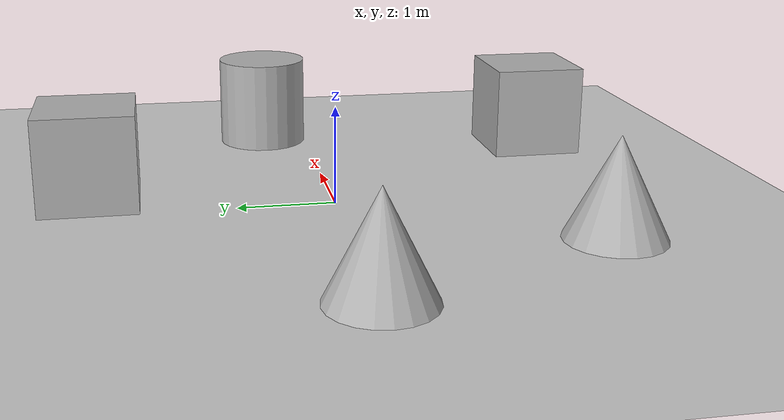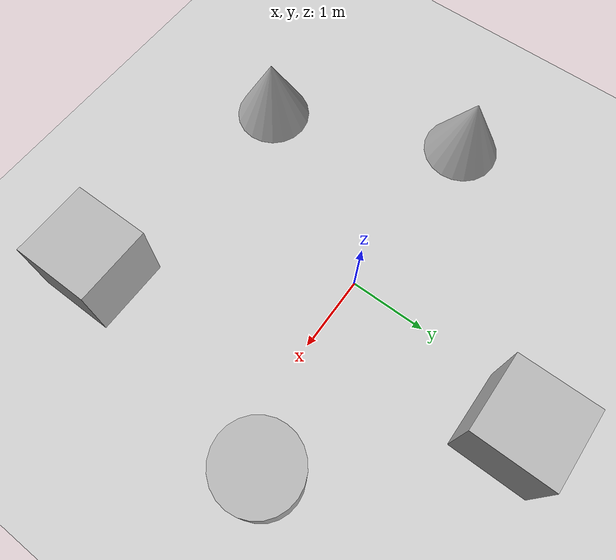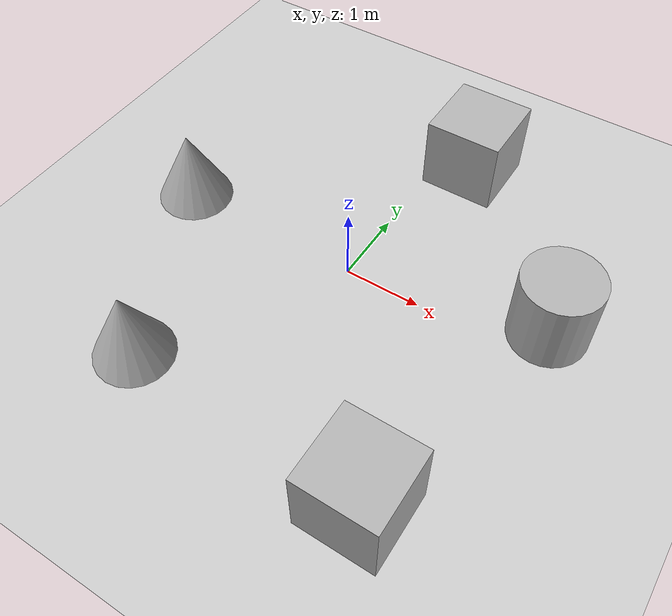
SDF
<sdf version='1.10'>
  <world name='empty'>
    <physics name='1ms' type='ignored'>
      <max_step_size>0.001</max_step_size>
      <real_time_factor>1</real_time_factor>
      <real_time_update_rate>1000</real_time_update_rate>
    </physics>
    <plugin name='gz::sim::systems::Physics' filename='gz-sim-physics-system'/>
    <plugin name='gz::sim::systems::UserCommands' filename='gz-sim-user-commands-system'/>
    <plugin name='gz::sim::systems::SceneBroadcaster' filename='gz-sim-scene-broadcaster-system'/>
    <plugin
      filename="gz-sim-sensors-system"
      name="gz::sim::systems::Sensors">
      <render_engine>ogre2</render_engine>
    </plugin>
    <plugin name='gz::sim::systems::Contact' filename='gz-sim-contact-system'/>
    <gravity>0 0 -9.8000000000000007</gravity>
    <magnetic_field>5.5644999999999998e-06 2.2875799999999999e-05 -4.2388400000000002e-05</magnetic_field>
    <atmosphere type='adiabatic'/>
    <scene>
      <ambient>0.400000006 0.400000006 0.400000006 1</ambient>
      <background>0.699999988 0.699999988 0.699999988 1</background>
      <shadows>true</shadows>
    </scene>
    <model name='ground_plane'>
      <static>true</static>
      <link name='link'>
        <collision name='collision'>
          <geometry>
            <plane>
              <normal>0 0 1</normal>
              <size>100 100</size>
            </plane>
          </geometry>
          <surface>
            <friction>
              <ode/>
            </friction>
            <bounce/>
            <contact/>
          </surface>
        </collision>
        <visual name='visual'>
          <geometry>
            <plane>
              <normal>0 0 1</normal>
              <size>100 100</size>
            </plane>
          </geometry>
          <material>
            <ambient>0.800000012 0.800000012 0.800000012 1</ambient>
            <diffuse>0.800000012 0.800000012 0.800000012 1</diffuse>
            <specular>0.800000012 0.800000012 0.800000012 1</specular>
          </material>
        </visual>
        <pose>0 0 0 0 0 0</pose>
        <inertial>
          <pose>0 0 0 0 0 0</pose>
          <mass>1</mass>
          <inertia>
            <ixx>1</ixx>
            <ixy>0</ixy>
            <ixz>0</ixz>
            <iyy>1</iyy>
            <iyz>0</iyz>
            <izz>1</izz>
          </inertia>
        </inertial>
        <enable_wind>false</enable_wind>
      </link>
      <pose>0 0 0 0 0 0</pose>
      <self_collide>false</self_collide>
    </model>
    <model name='box'>
      <pose>0.48252270364387284 2.4616562014807961 0.49999999990199806 6.2287739151293738e-22 9.3279666454713669e-22 -3.6315533669320137e-22</pose>
      <link name='box_link'>
        <inertial>
          <inertia>
            <ixx>0.16666</ixx>
            <ixy>0</ixy>
            <ixz>0</ixz>
            <iyy>0.16666</iyy>
            <iyz>0</iyz>
            <izz>0.16666</izz>
          </inertia>
          <mass>1</mass>
          <pose>0 0 0 0 0 0</pose>
        </inertial>
        <collision name='box_collision'>
          <geometry>
            <box>
              <size>1 1 1</size>
            </box>
          </geometry>
          <surface>
            <friction>
              <ode/>
            </friction>
            <bounce/>
            <contact/>
          </surface>
        </collision>
        <visual name='box_visual'>
          <geometry>
            <box>
              <size>1 1 1</size>
            </box>
          </geometry>
          <material>
            <ambient>0.300000012 0.300000012 0.300000012 1</ambient>
            <diffuse>0.699999988 0.699999988 0.699999988 1</diffuse>
            <specular>1 1 1 1</specular>
          </material>
        </visual>
        <pose>0 0 0 0 0 0</pose>
        <enable_wind>false</enable_wind>
      </link>
      <static>false</static>
      <self_collide>false</self_collide>
    </model>
    <model name='cone'>
      <pose>-2.5022908430280668 0.046825448630174321 0.49999999993296756 5.2548544155140844e-17 -7.7132841038066057e-10 -1.848369177196814e-23</pose>
      <link name='cone_link'>
        <inertial>
          <inertia>
            <ixx>0.074999999999999997</ixx>
            <ixy>0</ixy>
            <ixz>0</ixz>
            <iyy>0.074999999999999997</iyy>
            <iyz>0</iyz>
            <izz>0.074999999999999997</izz>
          </inertia>
          <mass>1</mass>
          <pose>0 0 0 0 0 0</pose>
        </inertial>
        <collision name='cone_collision'>
          <geometry>
            <cone>
              <radius>0.5</radius>
              <length>1</length>
            </cone>
          </geometry>
          <surface>
            <friction>
              <ode/>
            </friction>
            <bounce/>
            <contact/>
          </surface>
        </collision>
        <visual name='cone_visual'>
          <geometry>
            <cone>
              <radius>0.5</radius>
              <length>1</length>
            </cone>
          </geometry>
          <material>
            <ambient>0.300000012 0.300000012 0.300000012 1</ambient>
            <diffuse>0.699999988 0.699999988 0.699999988 1</diffuse>
            <specular>1 1 1 1</specular>
          </material>
        </visual>
        <pose>0 0 0 0 0 0</pose>
        <enable_wind>false</enable_wind>
      </link>
      <static>false</static>
      <self_collide>false</self_collide>
    </model>
    <model name='box_0'>
      <pose>1.7895553461860461 -2.6031519709525472 0.49999999990199806 6.2287739151293738e-22 9.3279666454713669e-22 -3.6315533669320137e-22</pose>
      <link name='box_link'>
        <inertial>
          <inertia>
            <ixx>0.16666</ixx>
            <ixy>0</ixy>
            <ixz>0</ixz>
            <iyy>0.16666</iyy>
            <iyz>0</iyz>
            <izz>0.16666</izz>
          </inertia>
          <mass>1</mass>
          <pose>0 0 0 0 0 0</pose>
        </inertial>
        <collision name='box_collision'>
          <geometry>
            <box>
              <size>1 1 1</size>
            </box>
          </geometry>
          <surface>
            <friction>
              <ode/>
            </friction>
            <bounce/>
            <contact/>
          </surface>
        </collision>
        <visual name='box_visual'>
          <geometry>
            <box>
              <size>1 1 1</size>
            </box>
          </geometry>
          <material>
            <ambient>0.300000012 0.300000012 0.300000012 1</ambient>
            <diffuse>0.699999988 0.699999988 0.699999988 1</diffuse>
            <specular>1 1 1 1</specular>
          </material>
        </visual>
        <pose>0 0 0 0 0 0</pose>
        <enable_wind>false</enable_wind>
      </link>
      <static>false</static>
      <self_collide>false</self_collide>
    </model>
    <model name='cylinder'>
      <pose>2.5099099980934567 0.48021443447025836 0.49999942638036005 -6.7411371770600185e-21 5.6379797371237468e-20 -1.521307342093246e-20</pose>
      <link name='cylinder_link'>
        <inertial>
          <inertia>
            <ixx>0.14580000000000001</ixx>
            <ixy>0</ixy>
            <ixz>0</ixz>
            <iyy>0.14580000000000001</iyy>
            <iyz>0</iyz>
            <izz>0.125</izz>
          </inertia>
          <mass>1</mass>
          <pose>0 0 0 0 0 0</pose>
        </inertial>
        <collision name='cylinder_collision'>
          <geometry>
            <cylinder>
              <radius>0.5</radius>
              <length>1</length>
            </cylinder>
          </geometry>
          <surface>
            <friction>
              <ode/>
            </friction>
            <bounce/>
            <contact/>
          </surface>
        </collision>
        <visual name='cylinder_visual'>
          <geometry>
            <cylinder>
              <radius>0.5</radius>
              <length>1</length>
            </cylinder>
          </geometry>
          <material>
            <ambient>0.300000012 0.300000012 0.300000012 1</ambient>
            <diffuse>0.699999988 0.699999988 0.699999988 1</diffuse>
            <specular>1 1 1 1</specular>
          </material>
        </visual>
        <pose>0 0 0 0 0 0</pose>
        <enable_wind>false</enable_wind>
      </link>
      <static>false</static>
      <self_collide>false</self_collide>
    </model>
    <model name='cone_0'>
      <pose>-1.4503872623111991 -2.3883337839933318 0.49999999993296756 5.254427032865594e-17 -7.7132841037428301e-10 -1.3782406032849548e-22</pose>
      <link name='cone_link'>
        <inertial>
          <inertia>
            <ixx>0.074999999999999997</ixx>
            <ixy>0</ixy>
            <ixz>0</ixz>
            <iyy>0.074999999999999997</iyy>
            <iyz>0</iyz>
            <izz>0.074999999999999997</izz>
          </inertia>
          <mass>1</mass>
          <pose>0 0 0 0 0 0</pose>
        </inertial>
        <collision name='cone_collision'>
          <geometry>
            <cone>
              <radius>0.5</radius>
              <length>1</length>
            </cone>
          </geometry>
          <surface>
            <friction>
              <ode/>
            </friction>
            <bounce/>
            <contact/>
          </surface>
        </collision>
        <visual name='cone_visual'>
          <geometry>
            <cone>
              <radius>0.5</radius>
              <length>1</length>
            </cone>
          </geometry>
          <material>
            <ambient>0.300000012 0.300000012 0.300000012 1</ambient>
            <diffuse>0.699999988 0.699999988 0.699999988 1</diffuse>
            <specular>1 1 1 1</specular>
          </material>
        </visual>
        <pose>0 0 0 0 0 0</pose>
        <enable_wind>false</enable_wind>
      </link>
      <static>false</static>
      <self_collide>false</self_collide>
    </model>
    <light name='sun' type='directional'>
      <pose>0 0 10 0 0 0</pose>
      <cast_shadows>true</cast_shadows>
      <intensity>1</intensity>
      <direction>-0.5 0.10000000000000001 -0.90000000000000002</direction>
      <diffuse>0.800000012 0.800000012 0.800000012 1</diffuse>
      <specular>0.200000003 0.200000003 0.200000003 1</specular>
      <attenuation>
        <range>1000</range>
        <linear>0.01</linear>
        <constant>0.90000000000000002</constant>
        <quadratic>0.001</quadratic>
      </attenuation>
      <spot>
        <inner_angle>0</inner_angle>
        <outer_angle>0</outer_angle>
        <falloff>0</falloff>
      </spot>
    </light>
  </world>
</sdf>
